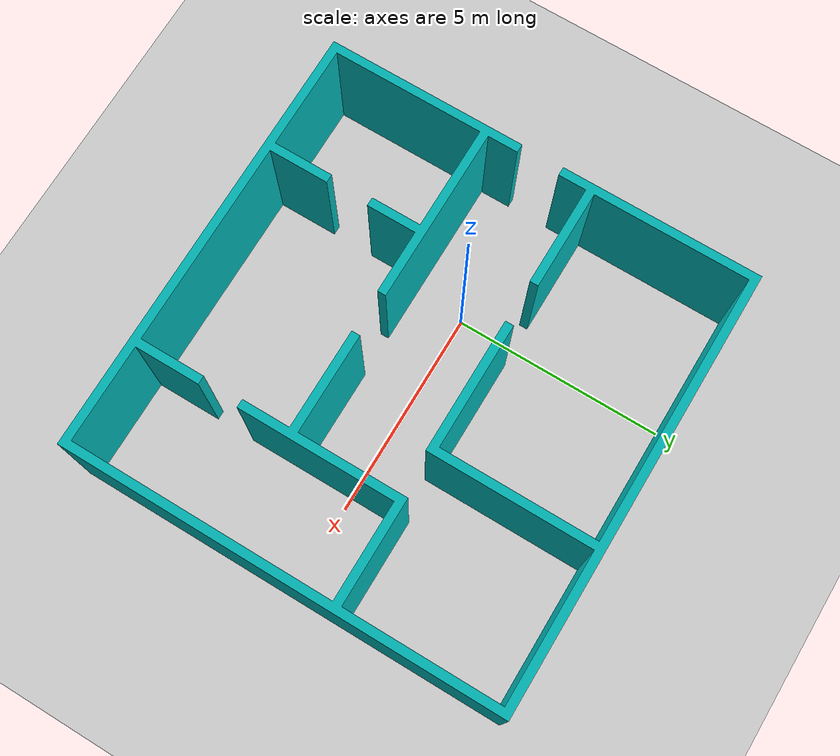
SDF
<?xml version="1.0"?>
<sdf version="1.10">
    <world name="car_world">
        <physics name="1ms" type="ignored">
            <max_step_size>0.001</max_step_size>
            <real_time_factor>1.0</real_time_factor>
        </physics>
        <plugin
            filename="gz-sim-physics-system"
            name="gz::sim::systems::Physics">
        </plugin>
        <plugin
            filename="gz-sim-user-commands-system"
            name="gz::sim::systems::UserCommands">
        </plugin>
        <plugin
            filename="gz-sim-scene-broadcaster-system"
            name="gz::sim::systems::SceneBroadcaster">
        </plugin>
        <plugin
            filename="gz-sim-sensors-system"
            name="gz::sim::systems::Sensors">
            <render_engine>ogre2</render_engine>
        </plugin>
        <plugin
            filename="gz-sim-contact-system"
            name="gz::sim::systems::Contact">
        </plugin>

        <light type="directional" name="sun">
            <cast_shadows>true</cast_shadows>
            <pose>0 0 10 0 0 0</pose>
            <diffuse>0.8 0.8 0.8 1</diffuse>
            <specular>0.2 0.2 0.2 1</specular>
            <attenuation>
                <range>1000</range>
                <constant>0.9</constant>
                <linear>0.01</linear>
                <quadratic>0.001</quadratic>
            </attenuation>
            <direction>-0.5 0.1 -0.9</direction>
        </light>

        <model name="ground_plane">
            <static>true</static>
            <link name="link">
                <collision name="collision">
                    <geometry>
                        <plane>
                            <normal>0 0 1</normal>
                        </plane>
                    </geometry>
                </collision>
                <visual name="visual">
                    <geometry>
                        <plane>
                            <normal>0 0 1</normal>
                            <size>100 100</size>
                        </plane>
                    </geometry>
                    <material>
                        <ambient>0.8 0.8 0.8 1</ambient>
                        <diffuse>0.8 0.8 0.8 1</diffuse>
                        <specular>0.8 0.8 0.8 1</specular>
                    </material>
                </visual>
            </link>
        </model>

        <model name="room_model">
            <pose>-3 5 0 0 0 -1.5708</pose>
            <static>true</static>
            <link name="room_link">
                <visual name="room_visual">
                    <geometry>
                        <mesh>
                            <uri>file://home/balazs/ROS/src/gulliverkli/meshes/ROS_MAP.stl</uri>
                        </mesh>
                    </geometry>
                    <material>
                        <ambient>0.0 0.5 0.5 1.0</ambient> <!-- Teal color -->
                        <diffuse>0.0 0.7 0.7 1.0</diffuse>
                        <specular>0.3 0.3 0.3 1.0</specular>
                    </material>
                </visual>
                <collision name="room_collision">
                    <geometry>
                        <mesh>
                            <uri>file://home/balazs/ROS/src/gulliverkli/meshes/ROS_MAP.stl</uri>
                        </mesh>
                    </geometry>
                </collision>
            </link>
        </model>
    </world>
</sdf>
